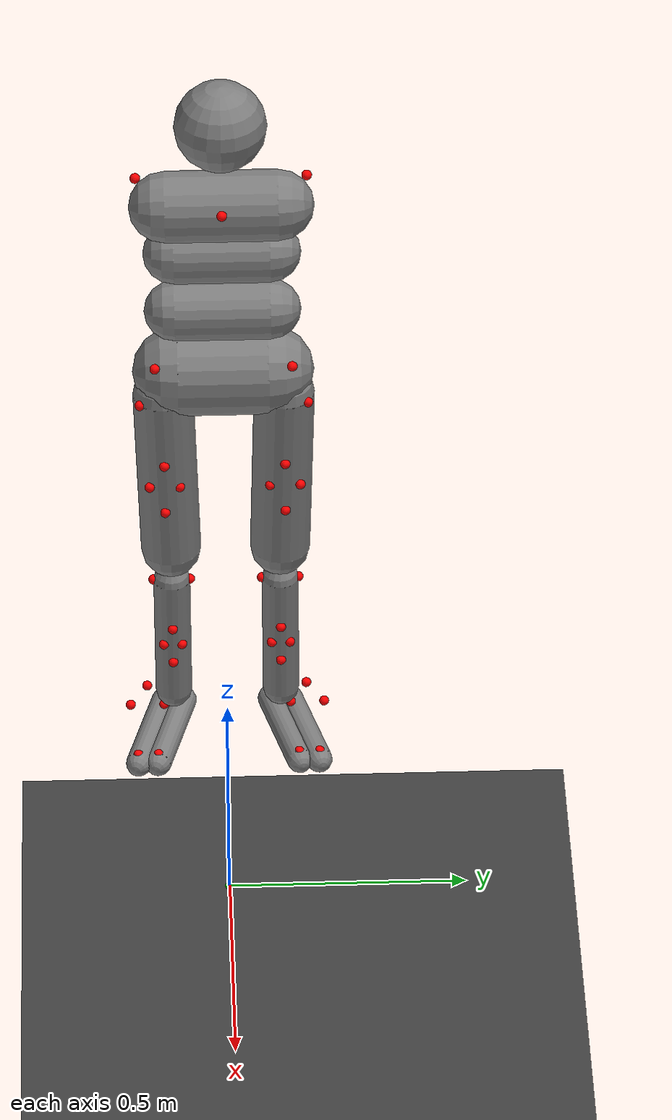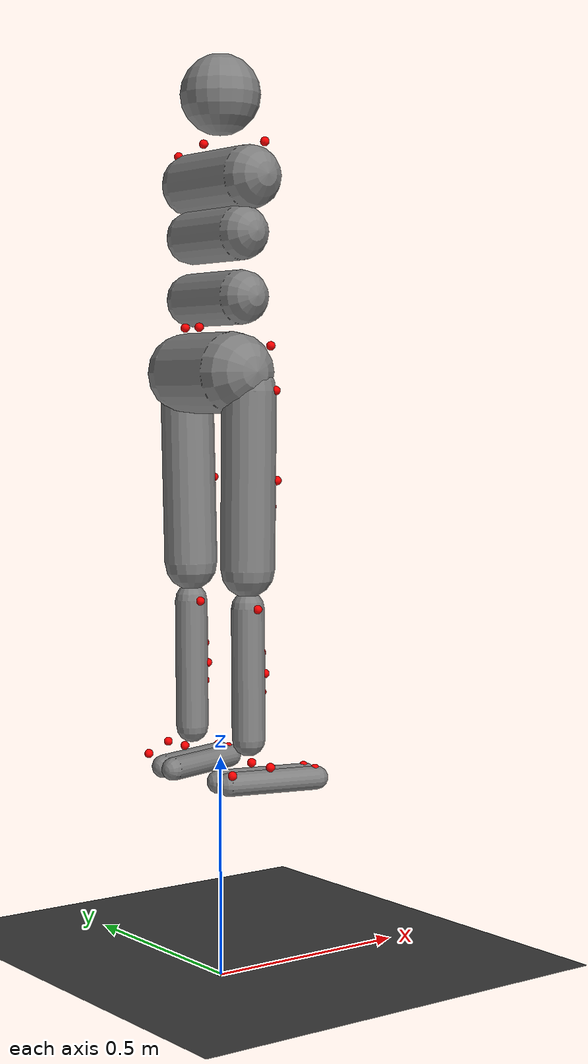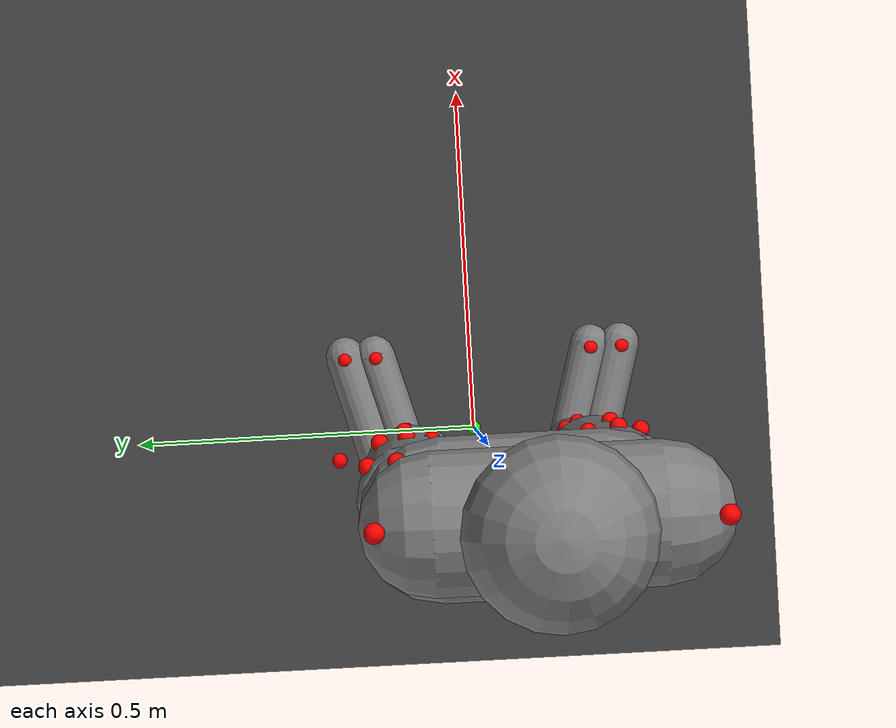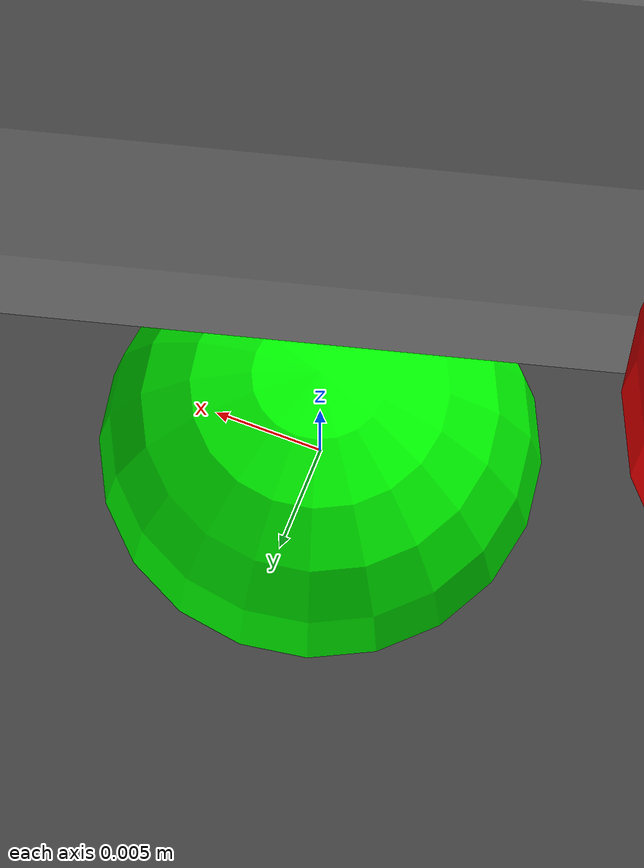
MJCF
<mujoco model="humanoid">
  <compiler settotalmass="50.0"/>
  <default>
    <default class="/"/>
    <default class="left_leg/"/>
    <default class="right_leg/"/>
  </default>
  <asset>
    <texture name="texplane" type="2d" builtin="checker" rgb1="0.20000000000000001 0.20000000000000001 0.20000000000000001" rgb2="0.29999999999999999 0.29999999999999999 0.29999999999999999" width="512" height="512"/>
    <material name="grid" class="/" texture="texplane" texrepeat="1 1" texuniform="true" reflectance="0.0"/>
  </asset>
  <worldbody>
    <geom name="floor" class="/" type="plane" conaffinity="1" size="100 100 0.20000000000000001" material="grid" pos="0 0 0"/>
    <body name="torso" pos="0 0 1.7925190961893867">
      <light name="top" class="/" mode="trackcom" pos="0 0 2"/>
      <camera name="back" class="/" mode="trackcom" pos="-3 0 1" xyaxes="0 -1 0 1 0 2"/>
      <camera name="side" class="/" mode="trackcom" pos="0 -3 1" xyaxes="1 0 0 0 1 2"/>
      <freejoint name="root"/>
      <geom name="torso" class="/" type="capsule" size="0.070000000000000007" fromto="0 -0.11025007379547949 0 0 0.11025007379547949 0"/>
      <site name="C7" class="/" type="sphere" rgba="1 0 0 1" size="0.01" pos="-0.044999999999999978 0 0.077942286340599479"/>
      <site name="RSHO" class="/" type="sphere" rgba="1 0 0 1" size="0.01" pos="4.2862637970157367e-18 -0.16537511069321925 0.070000000000000007"/>
      <site name="LSHO" class="/" type="sphere" rgba="1 0 0 1" size="0.01" pos="4.2862637970157367e-18 0.16537511069321925 0.070000000000000007"/>
      <site name="CLAV" class="/" type="sphere" rgba="1 0 0 1" size="0.01" pos="0.065778483455013595 0 0.023941410032796814"/>
      <geom name="upper_waist" class="/" type="capsule" size="0.059999999999999998" fromto="-0.01 -0.094500063253268124 -0.12 -0.01 0.094500063253268124 -0.12"/>
      <body name="head" pos="0 0 0.19">
        <geom name="head" class="/" type="sphere" size="0.089999999999999997" pos="0 0 0"/>
      </body>
      <camera name="egocentric" class="/" fovy="80.0" pos="0.089999999999999997 0 0" xyaxes="0 -1 0 0.10000000000000001 1 2"/>
      <body name="lower_waist" pos="-0.01 0 -0.26000000000000001" quat="1 0 -0.002 0">
        <geom name="lower_waist" class="/" type="capsule" size="0.059999999999999998" fromto="0 -0.094500063253268124 0 0 0.094500063253268124 0"/>
        <joint name="abdomen_z" class="/" type="hinge" pos="0 0 0.065000000000000002" axis="0 0 1" limited="true" solimplimit="0 0.98999999999999999 0.01" stiffness="20.0" range="-45 45" armature="0.01" damping="5.0"/>
        <joint name="abdomen_y" class="/" type="hinge" pos="0 0 0.065000000000000002" axis="0 1 0" limited="true" solimplimit="0 0.98999999999999999 0.01" stiffness="10.0" range="-75 30" armature="0.01" damping="5.0"/>
        <body name="pelvis" pos="0 0 -0.16500000000000001" quat="1 0 -0.002 0">
          <joint name="abdomen_x" class="/" type="hinge" pos="0 0 0.10000000000000001" axis="1 0 0" limited="true" solimplimit="0 0.98999999999999999 0.01" stiffness="10.0" range="-35 35" armature="0.01" damping="5.0"/>
          <geom name="butt" class="/" type="capsule" size="0.089999999999999997" fromto="-0.02 -0.090250073795479502 0 -0.02 0.090250073795479502 0"/>
          <site name="RASI" class="/" type="sphere" rgba="1 0 0 1" size="0.01" pos="0.048943999880708008 -0.13537511069321925 0.057850884871788529"/>
          <site name="LASI" class="/" type="sphere" rgba="1 0 0 1" size="0.01" pos="0.048943999880708008 0.13537511069321925 0.057850884871788529"/>
          <site name="RPSI" class="/" type="sphere" rgba="1 0 0 1" size="0.01" pos="-0.066488008791476927 -0.027075022138643851 0.0996938565740315"/>
          <site name="LPSI" class="/" type="sphere" rgba="1 0 0 1" size="0.01" pos="-0.066488008791476927 0.027075022138643851 0.0996938565740315"/>
          <site name="left_leg_site" class="/" size="9.9999999999999995e-07 9.9999999999999995e-07 9.9999999999999995e-07" pos="0 0.1202500737954795 -0.040000000000000001"/>
          <body pos="0 0.1202500737954795 -0.040000000000000001" name="left_leg/">
            <body name="left_leg/thigh">
              <joint name="left_leg/hip_x" class="left_leg/" type="hinge" axis="1 0 0" limited="true" solimplimit="0 0.98999999999999999 0.01" stiffness="10.0" range="-25 5" armature="0.01" damping="5.0"/>
              <joint name="left_leg/hip_z" class="left_leg/" type="hinge" axis="0 0 1" limited="true" solimplimit="0 0.98999999999999999 0.01" stiffness="10.0" range="-60 35" armature="0.01" damping="5.0"/>
              <joint name="left_leg/hip_y" class="left_leg/" type="hinge" axis="0 1 0" limited="true" solimplimit="0 0.98999999999999999 0.01" stiffness="20.0" range="-110 20" armature="0.01" damping="5.0"/>
              <geom name="left_leg/thigh" class="left_leg/" type="capsule" size="0.060276328793644196" fromto="0 0 0 0 -0.01 -0.39427130870307431"/>
              <site name="left_leg/LGT" class="left_leg/" type="sphere" rgba="1 0 0 1" size="0.01" pos="0.03874487730594648 0.046174346723983586 0"/>
              <site name="left_leg/LT1" class="left_leg/" type="sphere" rgba="1 0 0 1" size="0.01" pos="0.060276328793644196 0 -0.13799495804607601"/>
              <site name="left_leg/LT2" class="left_leg/" type="sphere" rgba="1 0 0 1" size="0.01" pos="0.052200831982159301 0.030138164396822095 -0.19713565435153715"/>
              <site name="left_leg/LT3" class="left_leg/" type="sphere" rgba="1 0 0 1" size="0.01" pos="0.060276328793644196 0 -0.25627635065699828"/>
              <site name="left_leg/LT4" class="left_leg/" type="sphere" rgba="1 0 0 1" size="0.01" pos="0.052200831982159301 -0.030138164396822095 -0.19713565435153715"/>
              <body name="left_leg/shin" pos="0 -0.01 -0.47849631212158394">
                <joint name="left_leg/knee" class="left_leg/" type="hinge" pos="0 0 0.02" axis="0 -1 0" limited="true" solimplimit="0 0.98999999999999999 0.01" stiffness="1.0" range="-160 2" armature="0.01" damping="0.2"/>
                <geom name="left_leg/shin" class="left_leg/" type="capsule" size="0.037015781509054567" fromto="0 0 0 0 0 -0.29254822313653617"/>
                <site name="left_leg/LKNL" class="left_leg/" type="sphere" rgba="1 0 0 1" size="0.01" pos="2.2665629171500728e-18 0.037015781509054567 0"/>
                <site name="left_leg/LKNM" class="left_leg/" type="sphere" rgba="1 0 0 1" size="0.01" pos="-6.7996887514502181e-18 -0.037015781509054567 0"/>
                <site name="left_leg/LS1" class="left_leg/" type="sphere" rgba="1 0 0 1" size="0.01" pos="0.037015781509054567 0 -0.10239187809778766"/>
                <site name="left_leg/LS2" class="left_leg/" type="sphere" rgba="1 0 0 1" size="0.01" pos="0.032056607127775541 0.01850789075452728 -0.14627411156826808"/>
                <site name="left_leg/LS3" class="left_leg/" type="sphere" rgba="1 0 0 1" size="0.01" pos="0.037015781509054567 0 -0.19015634503874851"/>
                <site name="left_leg/LS4" class="left_leg/" type="sphere" rgba="1 0 0 1" size="0.01" pos="0.032056607127775541 -0.01850789075452728 -0.14627411156826808"/>
                <body name="left_leg/foot" pos="0 0 -0.38196595982816534">
                  <joint name="left_leg/ankle_y" class="left_leg/" type="hinge" pos="0 0 0.080000000000000002" axis="0 1 0" limited="true" solimplimit="0 0.98999999999999999 0.01" stiffness="6.0" range="-50 50" armature="0.01" damping="0.2"/>
                  <joint name="left_leg/ankle_x" class="left_leg/" type="hinge" pos="0 0 0.040000000000000001" axis="1 0 0.5" limited="true" solimplimit="0 0.98999999999999999 0.01" stiffness="3.0" range="-50 50" armature="0.01" damping="0.2"/>
                  <geom name="left_leg/right_foot" class="left_leg/" type="capsule" size="0.02641773669162915" fromto="-0.067735642689668932 0.02 0 0.13068502137548416 0.075259955662061714 0"/>
                  <geom name="left_leg/left_foot" class="left_leg/" type="capsule" size="0.02641773669162915" fromto="-0.067735642689668932 -0.02 0 0.13068502137548416 0.035259955662061707 0"/>
                  <site name="left_leg/LANL" class="left_leg/" type="sphere" rgba="1 0 0 1" size="0.01" pos="-0.0070506213141847632 0.089850869001829786 0.041223845243783579"/>
                  <site name="left_leg/LANM" class="left_leg/" type="sphere" rgba="1 0 0 1" size="0.01" pos="-0.0070506213141847632 0.020669042322293642 0.041223845243783579"/>
                  <site name="left_leg/LHEE" class="left_leg/" type="sphere" rgba="1 0 0 1" size="0.01" pos="-0.084102353331436452 0.055259955662061711 0.02641773669162915"/>
                  <site name="left_leg/LM1" class="left_leg/" type="sphere" rgba="1 0 0 1" size="0.01" pos="0.12650571418238482 0.034504221486226554 0.02075573417583516"/>
                  <site name="left_leg/LM5" class="left_leg/" type="sphere" rgba="1 0 0 1" size="0.01" pos="0.12650571418238482 0.076015689837896874 0.020755734175835157"/>
                  <body name="left_leg/ffp_0_0" pos="-0.070000000000000007 -0.046417736691629151 -0.02641773669162915"/>
                  <body name="left_leg/ffp_0_1" pos="-0.070000000000000007 -0.025283547338325829 -0.02641773669162915"/>
                  <body name="left_leg/ffp_0_2" pos="-0.070000000000000007 -0.0041493579850225074 -0.02641773669162915"/>
                  <body name="left_leg/ffp_0_3" pos="-0.070000000000000007 0.016984831368280804 -0.02641773669162915"/>
                  <body name="left_leg/ffp_0_4" pos="-0.070000000000000007 0.038119020721584129 -0.02641773669162915"/>
                  <body name="left_leg/ffp_1_0" pos="-0.047169857180073577 -0.046417736691629151 -0.02641773669162915"/>
                  <body name="left_leg/ffp_1_1" pos="-0.047169857180073577 -0.025283547338325829 -0.02641773669162915"/>
                  <body name="left_leg/ffp_1_2" pos="-0.047169857180073577 -0.0041493579850225074 -0.02641773669162915"/>
                  <body name="left_leg/ffp_1_3" pos="-0.047169857180073577 0.016984831368280804 -0.02641773669162915"/>
                  <body name="left_leg/ffp_1_4" pos="-0.047169857180073577 0.038119020721584129 -0.02641773669162915"/>
                  <body name="left_leg/ffp_2_0" pos="-0.024339714360147154 -0.046417736691629151 -0.02641773669162915"/>
                  <body name="left_leg/ffp_2_1" pos="-0.024339714360147154 -0.025283547338325829 -0.02641773669162915"/>
                  <body name="left_leg/ffp_2_2" pos="-0.024339714360147154 -0.0041493579850225074 -0.02641773669162915"/>
                  <body name="left_leg/ffp_2_3" pos="-0.024339714360147154 0.016984831368280804 -0.02641773669162915"/>
                  <body name="left_leg/ffp_2_4" pos="-0.024339714360147154 0.038119020721584129 -0.02641773669162915"/>
                  <body name="left_leg/ffp_3_0" pos="-0.0015095715402207305 -0.046417736691629151 -0.02641773669162915"/>
                  <body name="left_leg/ffp_3_1" pos="-0.0015095715402207305 -0.025283547338325829 -0.02641773669162915"/>
                  <body name="left_leg/ffp_3_2" pos="-0.0015095715402207305 -0.0041493579850225074 -0.02641773669162915"/>
                  <body name="left_leg/ffp_3_3" pos="-0.0015095715402207305 0.016984831368280804 -0.02641773669162915"/>
                  <body name="left_leg/ffp_3_4" pos="-0.0015095715402207305 0.038119020721584129 -0.02641773669162915"/>
                  <body name="left_leg/ffp_4_0" pos="0.0213205712797057 -0.046417736691629151 -0.02641773669162915"/>
                  <body name="left_leg/ffp_4_1" pos="0.0213205712797057 -0.025283547338325829 -0.02641773669162915"/>
                  <body name="left_leg/ffp_4_2" pos="0.0213205712797057 -0.0041493579850225074 -0.02641773669162915"/>
                  <body name="left_leg/ffp_4_3" pos="0.0213205712797057 0.016984831368280804 -0.02641773669162915"/>
                  <body name="left_leg/ffp_4_4" pos="0.0213205712797057 0.038119020721584129 -0.02641773669162915"/>
                  <body name="left_leg/ffp_5_0" pos="0.04415071409963213 -0.046417736691629151 -0.02641773669162915"/>
                  <body name="left_leg/ffp_5_1" pos="0.04415071409963213 -0.025283547338325829 -0.02641773669162915"/>
                  <body name="left_leg/ffp_5_2" pos="0.04415071409963213 -0.0041493579850225074 -0.02641773669162915"/>
                  <body name="left_leg/ffp_5_3" pos="0.04415071409963213 0.016984831368280804 -0.02641773669162915"/>
                  <body name="left_leg/ffp_5_4" pos="0.04415071409963213 0.038119020721584129 -0.02641773669162915"/>
                  <body name="left_leg/ffp_6_0" pos="0.066980856919558546 -0.046417736691629151 -0.02641773669162915"/>
                  <body name="left_leg/ffp_6_1" pos="0.066980856919558546 -0.025283547338325829 -0.02641773669162915"/>
                  <body name="left_leg/ffp_6_2" pos="0.066980856919558546 -0.0041493579850225074 -0.02641773669162915"/>
                  <body name="left_leg/ffp_6_3" pos="0.066980856919558546 0.016984831368280804 -0.02641773669162915"/>
                  <body name="left_leg/ffp_6_4" pos="0.066980856919558546 0.038119020721584129 -0.02641773669162915"/>
                  <body name="left_leg/ffp_7_0" pos="0.089810999739484976 -0.046417736691629151 -0.02641773669162915"/>
                  <body name="left_leg/ffp_7_1" pos="0.089810999739484976 -0.025283547338325829 -0.02641773669162915"/>
                  <body name="left_leg/ffp_7_2" pos="0.089810999739484976 -0.0041493579850225074 -0.02641773669162915"/>
                  <body name="left_leg/ffp_7_3" pos="0.089810999739484976 0.016984831368280804 -0.02641773669162915"/>
                  <body name="left_leg/ffp_7_4" pos="0.089810999739484976 0.038119020721584129 -0.02641773669162915"/>
                  <body name="left_leg/ffp_8_0" pos="0.11264114255941141 -0.046417736691629151 -0.02641773669162915"/>
                  <body name="left_leg/ffp_8_1" pos="0.11264114255941141 -0.025283547338325829 -0.02641773669162915"/>
                  <body name="left_leg/ffp_8_2" pos="0.11264114255941141 -0.0041493579850225074 -0.02641773669162915"/>
                  <body name="left_leg/ffp_8_3" pos="0.11264114255941141 0.016984831368280804 -0.02641773669162915"/>
                  <body name="left_leg/ffp_8_4" pos="0.11264114255941141 0.038119020721584129 -0.02641773669162915"/>
                </body>
              </body>
            </body>
          </body>
          <site name="right_leg_site" class="/" size="9.9999999999999995e-07 9.9999999999999995e-07 9.9999999999999995e-07" pos="0 -0.1202500737954795 -0.040000000000000001"/>
          <body pos="0 -0.1202500737954795 -0.040000000000000001" name="right_leg/">
            <body name="right_leg/thigh">
              <joint name="right_leg/hip_x" class="right_leg/" type="hinge" axis="1 0 0" limited="true" solimplimit="0 0.98999999999999999 0.01" stiffness="10.0" range="-25 5" armature="0.01" damping="5.0"/>
              <joint name="right_leg/hip_z" class="right_leg/" type="hinge" axis="0 0 1" limited="true" solimplimit="0 0.98999999999999999 0.01" stiffness="10.0" range="-60 35" armature="0.01" damping="5.0"/>
              <joint name="right_leg/hip_y" class="right_leg/" type="hinge" axis="0 1 0" limited="true" solimplimit="0 0.98999999999999999 0.01" stiffness="20.0" range="-110 20" armature="0.01" damping="5.0"/>
              <geom name="right_leg/thigh" class="right_leg/" type="capsule" size="0.060276328793644196" fromto="0 0 0 0 0.01 -0.39427130870307431"/>
              <site name="right_leg/RGT" class="right_leg/" type="sphere" rgba="1 0 0 1" size="0.01" pos="0.038744877305946474 -0.046174346723983593 0"/>
              <site name="right_leg/RT1" class="right_leg/" type="sphere" rgba="1 0 0 1" size="0.01" pos="0.060276328793644196 0 -0.13799495804607601"/>
              <site name="right_leg/RT2" class="right_leg/" type="sphere" rgba="1 0 0 1" size="0.01" pos="0.052200831982159301 0.030138164396822095 -0.19713565435153715"/>
              <site name="right_leg/RT3" class="right_leg/" type="sphere" rgba="1 0 0 1" size="0.01" pos="0.060276328793644196 0 -0.25627635065699828"/>
              <site name="right_leg/RT4" class="right_leg/" type="sphere" rgba="1 0 0 1" size="0.01" pos="0.052200831982159301 -0.030138164396822095 -0.19713565435153715"/>
              <body name="right_leg/shin" pos="0 0.01 -0.47849631212158394">
                <joint name="right_leg/knee" class="right_leg/" type="hinge" pos="0 0 0.02" axis="0 -1 0" limited="true" solimplimit="0 0.98999999999999999 0.01" stiffness="1.0" range="-160 2" armature="0.01" damping="0.2"/>
                <geom name="right_leg/shin" class="right_leg/" type="capsule" size="0.037015781509054567" fromto="0 0 0 0 0 -0.29254822313653617"/>
                <site name="right_leg/RKNL" class="right_leg/" type="sphere" rgba="1 0 0 1" size="0.01" pos="-6.7996887514502181e-18 -0.037015781509054567 0"/>
                <site name="right_leg/RKNM" class="right_leg/" type="sphere" rgba="1 0 0 1" size="0.01" pos="2.2665629171500728e-18 0.037015781509054567 0"/>
                <site name="right_leg/RS1" class="right_leg/" type="sphere" rgba="1 0 0 1" size="0.01" pos="0.037015781509054567 0 -0.10239187809778766"/>
                <site name="right_leg/RS2" class="right_leg/" type="sphere" rgba="1 0 0 1" size="0.01" pos="0.032056607127775541 0.01850789075452728 -0.14627411156826808"/>
                <site name="right_leg/RS3" class="right_leg/" type="sphere" rgba="1 0 0 1" size="0.01" pos="0.037015781509054567 0 -0.19015634503874851"/>
                <site name="right_leg/RS4" class="right_leg/" type="sphere" rgba="1 0 0 1" size="0.01" pos="0.032056607127775541 -0.01850789075452728 -0.14627411156826808"/>
                <body name="right_leg/foot" pos="0 0 -0.38196595982816534">
                  <joint name="right_leg/ankle_y" class="right_leg/" type="hinge" pos="0 0 0.080000000000000002" axis="0 1 0" limited="true" solimplimit="0 0.98999999999999999 0.01" stiffness="6.0" range="-50 50" armature="0.01" damping="0.2"/>
                  <joint name="right_leg/ankle_x" class="right_leg/" type="hinge" pos="0 0 0.040000000000000001" axis="1 0 0.5" limited="true" solimplimit="0 0.98999999999999999 0.01" stiffness="3.0" range="-50 50" armature="0.01" damping="0.2"/>
                  <geom name="right_leg/right_foot" class="right_leg/" type="capsule" size="0.02641773669162915" fromto="-0.067735642689668932 -0.02 0 0.13068502137548416 -0.075259955662061714 0"/>
                  <geom name="right_leg/left_foot" class="right_leg/" type="capsule" size="0.02641773669162915" fromto="-0.067735642689668932 0.02 0 0.13068502137548416 -0.035259955662061707 0"/>
                  <site name="right_leg/RANL" class="right_leg/" type="sphere" rgba="1 0 0 1" size="0.01" pos="-0.0070506213141847632 -0.089850869001829786 0.041223845243783579"/>
                  <site name="right_leg/RANM" class="right_leg/" type="sphere" rgba="1 0 0 1" size="0.01" pos="-0.0070506213141847632 -0.020669042322293642 0.041223845243783579"/>
                  <site name="right_leg/RHEE" class="right_leg/" type="sphere" rgba="1 0 0 1" size="0.01" pos="-0.084102353331436452 -0.055259955662061711 0.02641773669162915"/>
                  <site name="right_leg/RM1" class="right_leg/" type="sphere" rgba="1 0 0 1" size="0.01" pos="0.12650571418238482 -0.034504221486226547 0.020755734175835157"/>
                  <site name="right_leg/RM5" class="right_leg/" type="sphere" rgba="1 0 0 1" size="0.01" pos="0.12650571418238482 -0.07601568983789686 0.02075573417583516"/>
                  <body name="right_leg/ffp_0_0" pos="-0.070000000000000007 -0.046417736691629151 -0.02641773669162915"/>
                  <body name="right_leg/ffp_0_1" pos="-0.070000000000000007 -0.025283547338325829 -0.02641773669162915"/>
                  <body name="right_leg/ffp_0_2" pos="-0.070000000000000007 -0.0041493579850225074 -0.02641773669162915"/>
                  <body name="right_leg/ffp_0_3" pos="-0.070000000000000007 0.016984831368280804 -0.02641773669162915"/>
                  <body name="right_leg/ffp_0_4" pos="-0.070000000000000007 0.038119020721584129 -0.02641773669162915"/>
                  <body name="right_leg/ffp_1_0" pos="-0.047169857180073577 -0.046417736691629151 -0.02641773669162915"/>
                  <body name="right_leg/ffp_1_1" pos="-0.047169857180073577 -0.025283547338325829 -0.02641773669162915"/>
                  <body name="right_leg/ffp_1_2" pos="-0.047169857180073577 -0.0041493579850225074 -0.02641773669162915"/>
                  <body name="right_leg/ffp_1_3" pos="-0.047169857180073577 0.016984831368280804 -0.02641773669162915"/>
                  <body name="right_leg/ffp_1_4" pos="-0.047169857180073577 0.038119020721584129 -0.02641773669162915"/>
                  <body name="right_leg/ffp_2_0" pos="-0.024339714360147154 -0.046417736691629151 -0.02641773669162915"/>
                  <body name="right_leg/ffp_2_1" pos="-0.024339714360147154 -0.025283547338325829 -0.02641773669162915"/>
                  <body name="right_leg/ffp_2_2" pos="-0.024339714360147154 -0.0041493579850225074 -0.02641773669162915"/>
                  <body name="right_leg/ffp_2_3" pos="-0.024339714360147154 0.016984831368280804 -0.02641773669162915"/>
                  <body name="right_leg/ffp_2_4" pos="-0.024339714360147154 0.038119020721584129 -0.02641773669162915"/>
                  <body name="right_leg/ffp_3_0" pos="-0.0015095715402207305 -0.046417736691629151 -0.02641773669162915"/>
                  <body name="right_leg/ffp_3_1" pos="-0.0015095715402207305 -0.025283547338325829 -0.02641773669162915"/>
                  <body name="right_leg/ffp_3_2" pos="-0.0015095715402207305 -0.0041493579850225074 -0.02641773669162915"/>
                  <body name="right_leg/ffp_3_3" pos="-0.0015095715402207305 0.016984831368280804 -0.02641773669162915"/>
                  <body name="right_leg/ffp_3_4" pos="-0.0015095715402207305 0.038119020721584129 -0.02641773669162915"/>
                  <body name="right_leg/ffp_4_0" pos="0.0213205712797057 -0.046417736691629151 -0.02641773669162915"/>
                  <body name="right_leg/ffp_4_1" pos="0.0213205712797057 -0.025283547338325829 -0.02641773669162915"/>
                  <body name="right_leg/ffp_4_2" pos="0.0213205712797057 -0.0041493579850225074 -0.02641773669162915"/>
                  <body name="right_leg/ffp_4_3" pos="0.0213205712797057 0.016984831368280804 -0.02641773669162915"/>
                  <body name="right_leg/ffp_4_4" pos="0.0213205712797057 0.038119020721584129 -0.02641773669162915"/>
                  <body name="right_leg/ffp_5_0" pos="0.04415071409963213 -0.046417736691629151 -0.02641773669162915"/>
                  <body name="right_leg/ffp_5_1" pos="0.04415071409963213 -0.025283547338325829 -0.02641773669162915"/>
                  <body name="right_leg/ffp_5_2" pos="0.04415071409963213 -0.0041493579850225074 -0.02641773669162915"/>
                  <body name="right_leg/ffp_5_3" pos="0.04415071409963213 0.016984831368280804 -0.02641773669162915"/>
                  <body name="right_leg/ffp_5_4" pos="0.04415071409963213 0.038119020721584129 -0.02641773669162915"/>
                  <body name="right_leg/ffp_6_0" pos="0.066980856919558546 -0.046417736691629151 -0.02641773669162915"/>
                  <body name="right_leg/ffp_6_1" pos="0.066980856919558546 -0.025283547338325829 -0.02641773669162915"/>
                  <body name="right_leg/ffp_6_2" pos="0.066980856919558546 -0.0041493579850225074 -0.02641773669162915"/>
                  <body name="right_leg/ffp_6_3" pos="0.066980856919558546 0.016984831368280804 -0.02641773669162915"/>
                  <body name="right_leg/ffp_6_4" pos="0.066980856919558546 0.038119020721584129 -0.02641773669162915"/>
                  <body name="right_leg/ffp_7_0" pos="0.089810999739484976 -0.046417736691629151 -0.02641773669162915"/>
                  <body name="right_leg/ffp_7_1" pos="0.089810999739484976 -0.025283547338325829 -0.02641773669162915"/>
                  <body name="right_leg/ffp_7_2" pos="0.089810999739484976 -0.0041493579850225074 -0.02641773669162915"/>
                  <body name="right_leg/ffp_7_3" pos="0.089810999739484976 0.016984831368280804 -0.02641773669162915"/>
                  <body name="right_leg/ffp_7_4" pos="0.089810999739484976 0.038119020721584129 -0.02641773669162915"/>
                  <body name="right_leg/ffp_8_0" pos="0.11264114255941141 -0.046417736691629151 -0.02641773669162915"/>
                  <body name="right_leg/ffp_8_1" pos="0.11264114255941141 -0.025283547338325829 -0.02641773669162915"/>
                  <body name="right_leg/ffp_8_2" pos="0.11264114255941141 -0.0041493579850225074 -0.02641773669162915"/>
                  <body name="right_leg/ffp_8_3" pos="0.11264114255941141 0.016984831368280804 -0.02641773669162915"/>
                  <body name="right_leg/ffp_8_4" pos="0.11264114255941141 0.038119020721584129 -0.02641773669162915"/>
                </body>
              </body>
            </body>
          </body>
        </body>
      </body>
    </body>
    <body name="m0" mocap="true" pos="0 0 0">
      <geom name="m0" class="/" type="sphere" size="0.01" rgba="0 1 0 1" mass="0.0"/>
    </body>
    <body name="m1" mocap="true" pos="0 0 0">
      <geom name="m1" class="/" type="sphere" size="0.01" rgba="0 1 0 1" mass="0.0"/>
    </body>
    <body name="m2" mocap="true" pos="0 0 0">
      <geom name="m2" class="/" type="sphere" size="0.01" rgba="0 1 0 1" mass="0.0"/>
    </body>
    <body name="m3" mocap="true" pos="0 0 0">
      <geom name="m3" class="/" type="sphere" size="0.01" rgba="0 1 0 1" mass="0.0"/>
    </body>
    <body name="m4" mocap="true" pos="0 0 0">
      <geom name="m4" class="/" type="sphere" size="0.01" rgba="0 1 0 1" mass="0.0"/>
    </body>
    <body name="m5" mocap="true" pos="0 0 0">
      <geom name="m5" class="/" type="sphere" size="0.01" rgba="0 1 0 1" mass="0.0"/>
    </body>
    <body name="m6" mocap="true" pos="0 0 0">
      <geom name="m6" class="/" type="sphere" size="0.01" rgba="0 1 0 1" mass="0.0"/>
    </body>
    <body name="m7" mocap="true" pos="0 0 0">
      <geom name="m7" class="/" type="sphere" size="0.01" rgba="0 1 0 1" mass="0.0"/>
    </body>
    <body name="m8" mocap="true" pos="0 0 0">
      <geom name="m8" class="/" type="sphere" size="0.01" rgba="0 1 0 1" mass="0.0"/>
    </body>
    <body name="m9" mocap="true" pos="0 0 0">
      <geom name="m9" class="/" type="sphere" size="0.01" rgba="0 1 0 1" mass="0.0"/>
    </body>
    <body name="m10" mocap="true" pos="0 0 0">
      <geom name="m10" class="/" type="sphere" size="0.01" rgba="0 1 0 1" mass="0.0"/>
    </body>
    <body name="m11" mocap="true" pos="0 0 0">
      <geom name="m11" class="/" type="sphere" size="0.01" rgba="0 1 0 1" mass="0.0"/>
    </body>
    <body name="m12" mocap="true" pos="0 0 0">
      <geom name="m12" class="/" type="sphere" size="0.01" rgba="0 1 0 1" mass="0.0"/>
    </body>
    <body name="m13" mocap="true" pos="0 0 0">
      <geom name="m13" class="/" type="sphere" size="0.01" rgba="0 1 0 1" mass="0.0"/>
    </body>
    <body name="m14" mocap="true" pos="0 0 0">
      <geom name="m14" class="/" type="sphere" size="0.01" rgba="0 1 0 1" mass="0.0"/>
    </body>
    <body name="m15" mocap="true" pos="0 0 0">
      <geom name="m15" class="/" type="sphere" size="0.01" rgba="0 1 0 1" mass="0.0"/>
    </body>
    <body name="m16" mocap="true" pos="0 0 0">
      <geom name="m16" class="/" type="sphere" size="0.01" rgba="0 1 0 1" mass="0.0"/>
    </body>
    <body name="m17" mocap="true" pos="0 0 0">
      <geom name="m17" class="/" type="sphere" size="0.01" rgba="0 1 0 1" mass="0.0"/>
    </body>
    <body name="m18" mocap="true" pos="0 0 0">
      <geom name="m18" class="/" type="sphere" size="0.01" rgba="0 1 0 1" mass="0.0"/>
    </body>
    <body name="m19" mocap="true" pos="0 0 0">
      <geom name="m19" class="/" type="sphere" size="0.01" rgba="0 1 0 1" mass="0.0"/>
    </body>
    <body name="m20" mocap="true" pos="0 0 0">
      <geom name="m20" class="/" type="sphere" size="0.01" rgba="0 1 0 1" mass="0.0"/>
    </body>
    <body name="m21" mocap="true" pos="0 0 0">
      <geom name="m21" class="/" type="sphere" size="0.01" rgba="0 1 0 1" mass="0.0"/>
    </body>
    <body name="m22" mocap="true" pos="0 0 0">
      <geom name="m22" class="/" type="sphere" size="0.01" rgba="0 1 0 1" mass="0.0"/>
    </body>
    <body name="m23" mocap="true" pos="0 0 0">
      <geom name="m23" class="/" type="sphere" size="0.01" rgba="0 1 0 1" mass="0.0"/>
    </body>
    <body name="m24" mocap="true" pos="0 0 0">
      <geom name="m24" class="/" type="sphere" size="0.01" rgba="0 1 0 1" mass="0.0"/>
    </body>
    <body name="m25" mocap="true" pos="0 0 0">
      <geom name="m25" class="/" type="sphere" size="0.01" rgba="0 1 0 1" mass="0.0"/>
    </body>
    <body name="m26" mocap="true" pos="0 0 0">
      <geom name="m26" class="/" type="sphere" size="0.01" rgba="0 1 0 1" mass="0.0"/>
    </body>
    <body name="m27" mocap="true" pos="0 0 0">
      <geom name="m27" class="/" type="sphere" size="0.01" rgba="0 1 0 1" mass="0.0"/>
    </body>
    <body name="m28" mocap="true" pos="0 0 0">
      <geom name="m28" class="/" type="sphere" size="0.01" rgba="0 1 0 1" mass="0.0"/>
    </body>
    <body name="m29" mocap="true" pos="0 0 0">
      <geom name="m29" class="/" type="sphere" size="0.01" rgba="0 1 0 1" mass="0.0"/>
    </body>
    <body name="m30" mocap="true" pos="0 0 0">
      <geom name="m30" class="/" type="sphere" size="0.01" rgba="0 1 0 1" mass="0.0"/>
    </body>
    <body name="m31" mocap="true" pos="0 0 0">
      <geom name="m31" class="/" type="sphere" size="0.01" rgba="0 1 0 1" mass="0.0"/>
    </body>
    <body name="m32" mocap="true" pos="0 0 0">
      <geom name="m32" class="/" type="sphere" size="0.01" rgba="0 1 0 1" mass="0.0"/>
    </body>
    <body name="m33" mocap="true" pos="0 0 0">
      <geom name="m33" class="/" type="sphere" size="0.01" rgba="0 1 0 1" mass="0.0"/>
    </body>
    <body name="m34" mocap="true" pos="0 0 0">
      <geom name="m34" class="/" type="sphere" size="0.01" rgba="0 1 0 1" mass="0.0"/>
    </body>
    <body name="m35" mocap="true" pos="0 0 0">
      <geom name="m35" class="/" type="sphere" size="0.01" rgba="0 1 0 1" mass="0.0"/>
    </body>
    <body name="m36" mocap="true" pos="0 0 0">
      <geom name="m36" class="/" type="sphere" size="0.01" rgba="0 1 0 1" mass="0.0"/>
    </body>
    <body name="m37" mocap="true" pos="0 0 0">
      <geom name="m37" class="/" type="sphere" size="0.01" rgba="0 1 0 1" mass="0.0"/>
    </body>
    <body name="m38" mocap="true" pos="0 0 0">
      <geom name="m38" class="/" type="sphere" size="0.01" rgba="0 1 0 1" mass="0.0"/>
    </body>
    <body name="m39" mocap="true" pos="0 0 0">
      <geom name="m39" class="/" type="sphere" size="0.01" rgba="0 1 0 1" mass="0.0"/>
    </body>
  </worldbody>
  <equality>
    <weld name="world_root" class="/" active="false" body1="torso" relpose="0 0 -2 1 0 0 0"/>
    <joint name="abdomen_y" class="/" active="true" joint1="abdomen_y"/>
    <joint name="abdomen_z" class="/" active="true" joint1="abdomen_z"/>
    <joint name="abdomen_x" class="/" active="true" joint1="abdomen_x"/>
  </equality>
  <actuator>
    <motor name="abdomen_z" class="/" gear="40" joint="abdomen_z"/>
    <motor name="abdomen_y" class="/" gear="40" joint="abdomen_y"/>
    <motor name="abdomen_x" class="/" gear="40" joint="abdomen_x"/>
    <motor name="left_leg/hip_x" class="left_leg/" gear="40" joint="left_leg/hip_x"/>
    <motor name="left_leg/hip_z" class="left_leg/" gear="40" joint="left_leg/hip_z"/>
    <motor name="left_leg/hip_y" class="left_leg/" gear="120" joint="left_leg/hip_y"/>
    <motor name="left_leg/knee" class="left_leg/" gear="80" joint="left_leg/knee"/>
    <motor name="left_leg/ankle_y" class="left_leg/" gear="20" joint="left_leg/ankle_y"/>
    <motor name="left_leg/ankle_x" class="left_leg/" gear="20" joint="left_leg/ankle_x"/>
    <motor name="right_leg/hip_x" class="right_leg/" gear="40" joint="right_leg/hip_x"/>
    <motor name="right_leg/hip_z" class="right_leg/" gear="40" joint="right_leg/hip_z"/>
    <motor name="right_leg/hip_y" class="right_leg/" gear="120" joint="right_leg/hip_y"/>
    <motor name="right_leg/knee" class="right_leg/" gear="80" joint="right_leg/knee"/>
    <motor name="right_leg/ankle_y" class="right_leg/" gear="20" joint="right_leg/ankle_y"/>
    <motor name="right_leg/ankle_x" class="right_leg/" gear="20" joint="right_leg/ankle_x"/>
  </actuator>
</mujoco>
